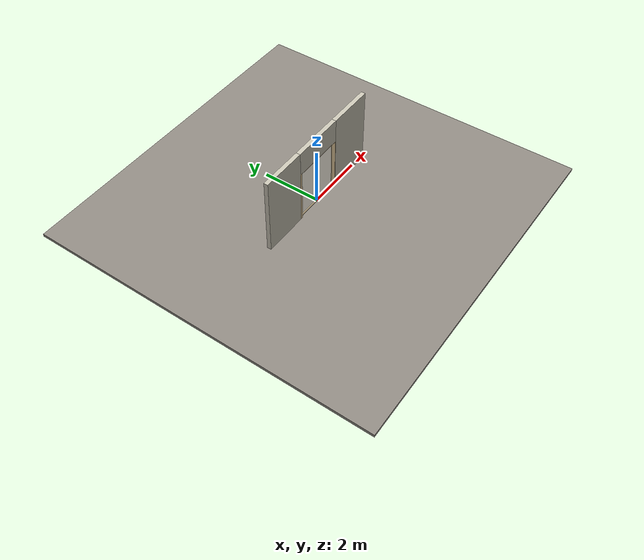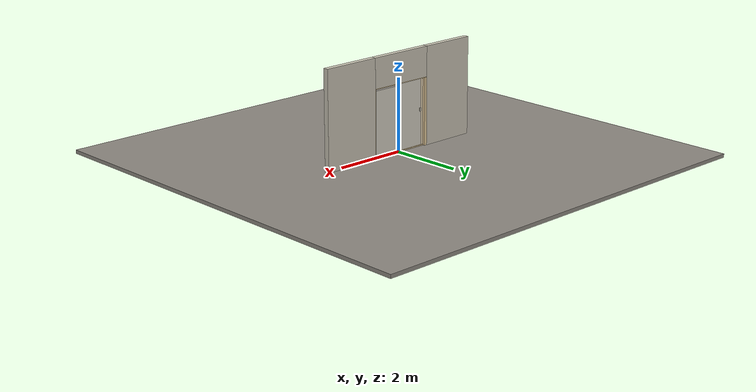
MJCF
<?xml version="1.0" ?>
<mujoco model="db0588_sliding_single_simple">
  <compiler angle="radian" meshdir="../../hardware" texturedir="../../textures" autolimits="true" inertiafromgeom="false"/>
  <option timestep="0.002" integrator="implicitfast" cone="elliptic" impratio="10" noslip_iterations="3">
    <flag multiccd="enable"/>
  </option>
  <size memory="16M"/>
  <default>
    <geom condim="4" solref="0.005 1" solimp="0.95 0.99 0.001"/>
    <joint solreflimit="0.005 1" solimplimit="0.95 0.99 0.001"/>
    <tendon solreflimit="0.005 1"/>
    <equality solref="0.002 1"/>
  </default>
  <visual>
    <headlight ambient="0.4 0.4 0.4" diffuse="0.7 0.7 0.7" specular="0.2 0.2 0.2"/>
    <quality shadowsize="4096"/>
    <map znear="0.01" zfar="60"/>
  </visual>
  <asset>
    <material name="mat_floor" rgba="0.55 0.53 0.5 1" specular="0.2" shininess="0.15" reflectance="0"/>
    <material name="mat_wall" rgba="0.78 0.76 0.7 1" specular="0.2" shininess="0.1" reflectance="0"/>
    <material name="mat_frame" rgba="0.88 0.78 0.6 1" specular="0.2" shininess="0.4" reflectance="0"/>
    <material name="mat_track" rgba="0.8 0.81 0.83 1" specular="0.8" shininess="0.6" reflectance="0.4"/>
    <material name="mat_fixed_glass" rgba="0.85 0.92 0.95 0.25" specular="0.2" shininess="0.95" reflectance="0.1"/>
    <material name="mat_fixed_shoji" rgba="0.98 0.96 0.9 0.45" specular="0.2" shininess="0.1" reflectance="0.1"/>
    <material name="mat_shikii" rgba="0.88 0.78 0.6 1" specular="0.2" shininess="0.4" reflectance="0"/>
    <material name="mat_leaf" rgba="0.98 0.96 0.9 0.45" specular="0.2" shininess="0.1" reflectance="0.1"/>
    <material name="mat_roller" rgba="0.65 0.66 0.68 1" specular="0.74" shininess="0.5" reflectance="0.36"/>
    <material name="mat_op_hinoki" rgba="0.88 0.78 0.6 1" specular="0.2" shininess="0.4" reflectance="0"/>
    <material name="mat_op_nickel_satin" rgba="0.72 0.7 0.66 1" specular="0.8" shininess="0.65" reflectance="0.4"/>
    <material name="mat_hook" rgba="0.75 0.76 0.77 1" specular="0.8" shininess="0.65" reflectance="0.4"/>
    <texture name="skybox" type="skybox" builtin="gradient" rgb1="0.6 0.7 0.85" rgb2="0.9 0.92 0.95" width="256" height="256"/>
  </asset>
  <worldbody>
    <light name="sun" pos="1.5 -2.5 4" dir="-0.3 0.5 -0.8" directional="true" diffuse="0.8 0.8 0.8" specular="0.3 0.3 0.3" castshadow="true"/>
    <light name="fill" pos="-1.5 2.5 3" dir="0.3 -0.5 -0.7" directional="true" diffuse="0.35 0.35 0.4" castshadow="false"/>
    <camera name="robot_view" pos="0 -2.36875 1.59325" xyaxes="1 0 0 0 0.26963 0.962964" fovy="52"/>
    <camera name="far_view" pos="0 2.36875 1.59325" xyaxes="-1 0 0 0 -0.26963 0.962964" fovy="52"/>
    <camera name="iso" pos="1.80025 -1.98975 1.97225" xyaxes="0.741536 0.670913 0 -0.242917 0.268487 0.932151" fovy="46"/>
    <camera name="detail_handle" pos="-0.595 -0.815 1.28" xyaxes="0.97561 0.219512 0 -0.070934 0.315262 0.94635" fovy="38"/>
    <geom name="floor" type="box" size="6 6 0.05" pos="0 0 -0.05" material="mat_floor" group="0" contype="1" conaffinity="1" friction="0.8 0.005 0.0001" density="2400"/>
    <geom name="wall_left" type="box" size="0.7755 0.0725 1.35" pos="-1.7245 0 1.35" material="mat_wall" group="0" contype="1" conaffinity="1" friction="0.6 0.005 0.0001" density="800"/>
    <geom name="wall_right" type="box" size="0.8055 0.0725 1.35" pos="1.6945 0 1.35" material="mat_wall" group="0" contype="1" conaffinity="1" friction="0.6 0.005 0.0001" density="800"/>
    <geom name="wall_header" type="box" size="0.919 0.0725 0.4105" pos="-0.03 0 2.2895" material="mat_wall" group="0" contype="1" conaffinity="1" friction="0.6 0.005 0.0001" density="800"/>
    <geom name="jamb_r" type="box" size="0.0095 0.0725 0.93" pos="0.8795 0 0.93" material="mat_frame" group="0" contype="1" conaffinity="1" friction="0.6 0.005 0.0001" density="300"/>
    <geom name="jamb_head" type="box" size="0.889 0.0725 0.0095" pos="0 0 1.8695" material="mat_frame" group="0" contype="1" conaffinity="1" friction="0.6 0.005 0.0001" density="300"/>
    <geom name="fixed_panel_glass" type="box" size="0.415 0.003 0.88" pos="0.435 0.04 0.93" material="mat_fixed_shoji" group="0" contype="1" conaffinity="1" friction="0.6 0.005 0.0001" density="2500"/>
    <geom name="fixed_panel_stile" type="box" size="0.03 0.012 0.93" pos="0.03 0.04 0.93" material="mat_frame" group="0" contype="1" conaffinity="1" friction="0.6 0.005 0.0001" density="1400"/>
    <geom name="shikii" type="box" size="0.91 0.025 0.012" pos="-0.005 0 0.012" material="mat_shikii" group="0" contype="1" conaffinity="1" friction="0.6 0.005 0.0001" density="2700"/>
    <geom name="kamoi" type="box" size="0.91 0.025 0.03" pos="-0.005 0 1.89" material="mat_shikii" group="0" contype="1" conaffinity="1" friction="0.6 0.005 0.0001" density="410"/>
    <geom name="jamb_latch_0" type="box" size="0.0395 0.0725 0.93" pos="-0.9095 0 0.93" material="mat_frame" group="0" contype="1" conaffinity="1" friction="0.6 0.005 0.0001" density="300"/>
    <site name="approach_point" pos="0 -1.5 0" quat="1 0 0 0" size="0.05" rgba="0.2 0.9 0.2 0.5" group="4"/>
    <site name="goal_point" pos="0 1.5 0" quat="1 0 0 0" size="0.05" rgba="0.2 0.9 0.2 0.5" group="4"/>
    <site name="door_plane_center" pos="0 0 0.93" quat="1 0 0 0" size="0.02" rgba="0.2 0.9 0.2 0.5" group="4"/>
    <body name="leaf" pos="-0.435 0 0">
      <inertial pos="-0.000068 0.000001 0.927015" mass="37.182" quat="0.500005 0.500007 0.499992 -0.499996" diaginertia="2.294841118 10.039975564 12.329236934"/>
      <joint name="leaf_slide" type="slide" axis="1 0 0" limited="true" range="0 0.86" damping="3.8591" frictionloss="43.755703" armature="0.5"/>
      <geom name="leaf_slab" type="box" size="0.43 0.015 0.9" pos="0 0 0.927" material="mat_leaf" group="0" contype="1" conaffinity="1" friction="0.3 0.005 0.0001" density="1"/>
      <geom name="leaf_pull_n" type="box" size="0.015 0.0005 0.04" pos="-0.34 -0.0155 1" material="mat_op_hinoki" group="1" contype="0" conaffinity="0" density="1000"/>
      <geom name="leaf_ext_pull_p" type="box" size="0.025 0.0005 0.05" pos="-0.34 0.0155 1" material="mat_op_nickel_satin" group="1" contype="0" conaffinity="0" density="1000"/>
      <site name="leaf_pull_grip_n" pos="-0.34 -0.015 1" quat="1 0 0 0" size="0.012" rgba="0.2 0.9 0.2 0.5" group="4"/>
      <site name="leaf_ext_pull_grip_p" pos="-0.34 0.015 1" quat="1 0 0 0" size="0.012" rgba="0.2 0.9 0.2 0.5" group="4"/>
      <site name="leaf_edge_mid" pos="-0.43 0 0.927" quat="1 0 0 0" size="0.02" rgba="0.2 0.9 0.2 0.5" group="4"/>
    </body>
  </worldbody>
  <sensor>
    <jointpos name="leaf_slide_pos" joint="leaf_slide"/>
    <jointvel name="leaf_slide_vel" joint="leaf_slide"/>
  </sensor>
</mujoco>
